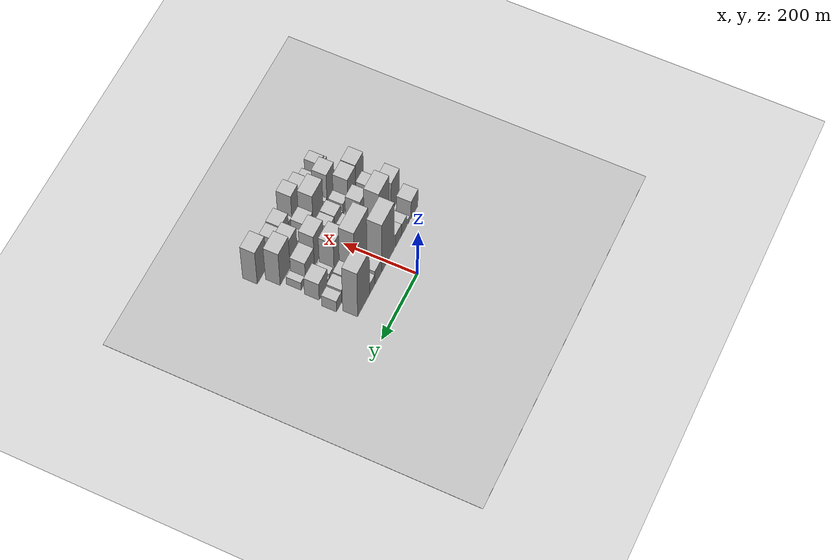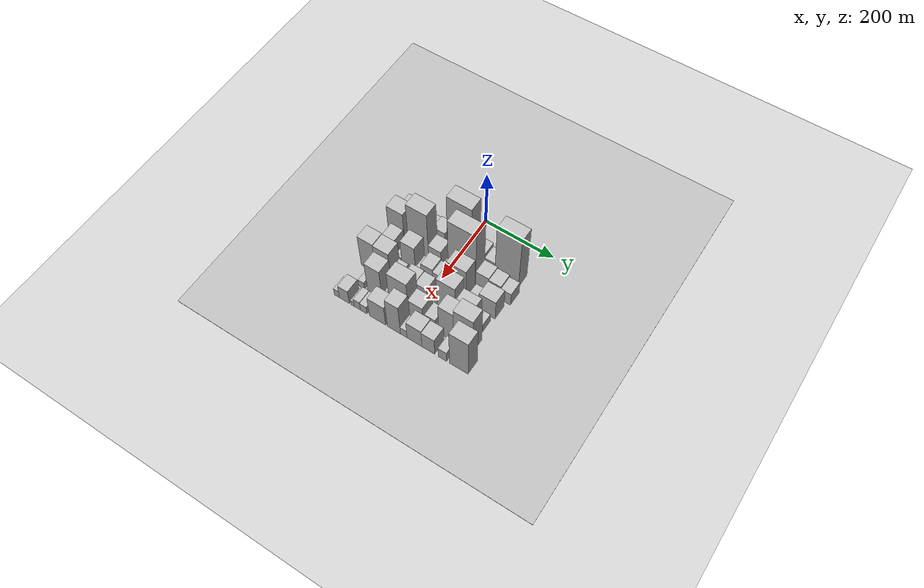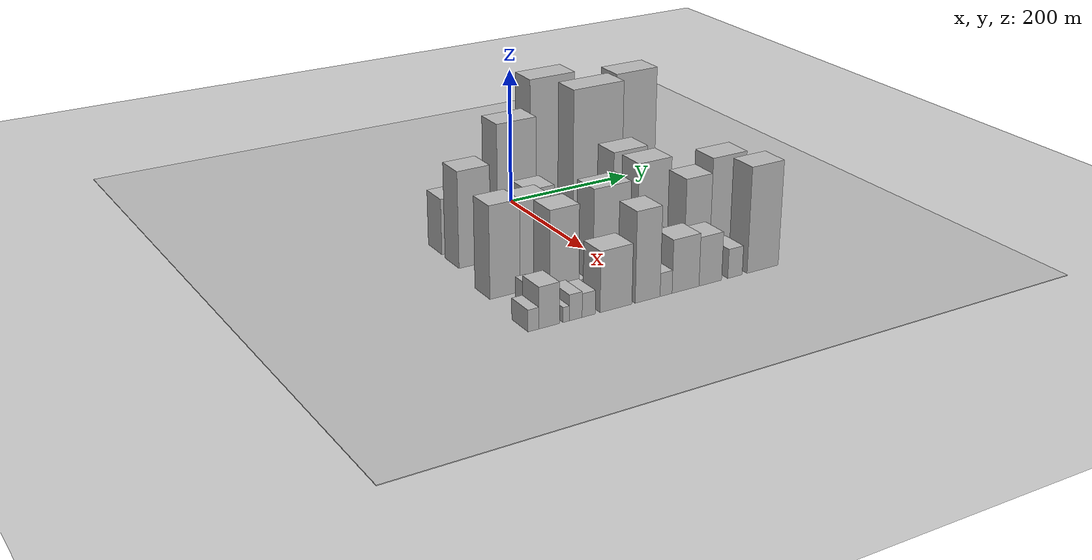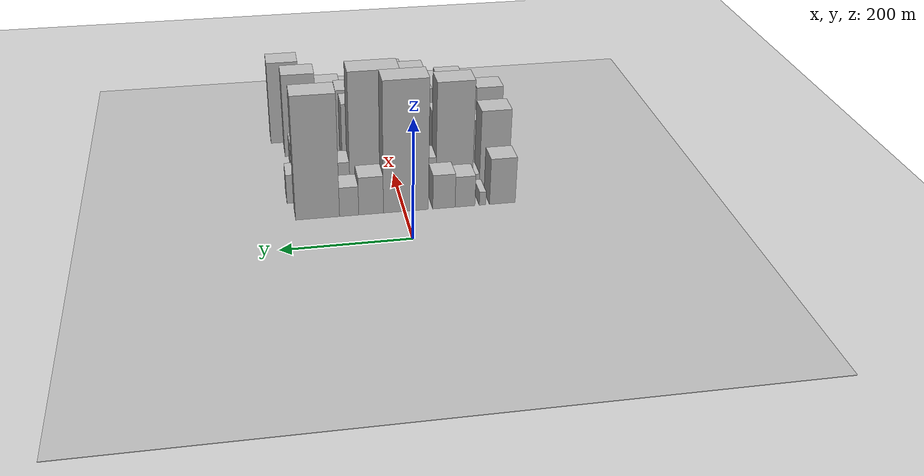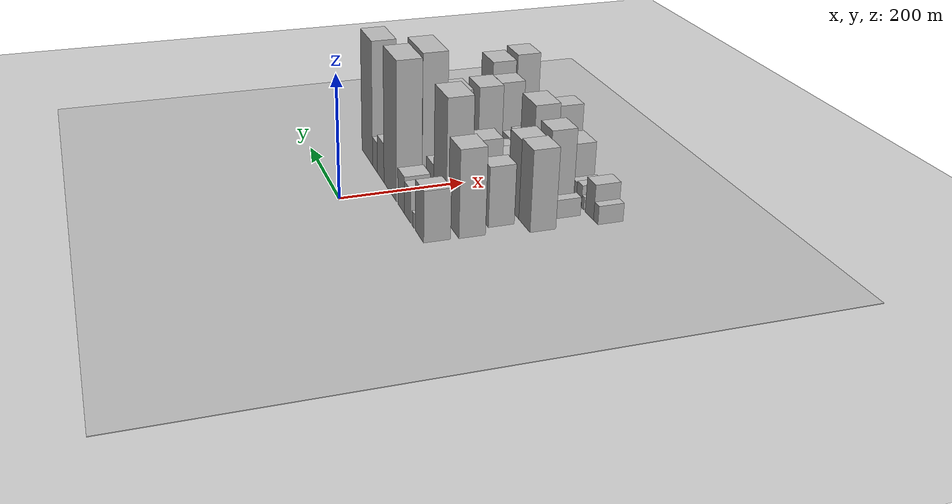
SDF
<sdf version="1.6">
 <world name="default">
  <include><name>ground_plane_1</name><uri>model://HANNAS_ground_plane</uri></include>
  <include>
   <name>ground_plane_2</name>
   <uri>model://HANNAS_ground_plane</uri>
   <pose>100 0 0  0 0 0</pose>
  </include>
  <model name="building_18">
   <static>1</static>
   <pose>100.0000 -155.4308 0 0.000000 0.000000 0.000000</pose>
   <link name="link">
    <pose>0 0 40.50 0 0 0</pose>
    <collision name="collision"><geometry><box><size>40.0000 41.4111 81.0000</size></box></geometry></collision>
    <visual name="visual">
     <cast_shadows>0</cast_shadows>
     <geometry><box><size>40.0000 41.4111 81.0000</size></box></geometry>
     <material>
      <script>
       <uri>model://HANNAS_wall/materials/scripts</uri>
       <uri>model://HANNAS_wall/materials/textures</uri>
       <name>vrc/HANNAS_wall</name>
      </script>
     </material>
    </visual>
   </link>
  </model>
  <model name="building_19">
   <static>1</static>
   <pose>100.0000 -123.5469 0 0.000000 0.000000 0.000000</pose>
   <link name="link">
    <pose>0 0 12.00 0 0 0</pose>
    <collision name="collision"><geometry><box><size>40.0000 10.3565 24.0000</size></box></geometry></collision>
    <visual name="visual">
     <cast_shadows>0</cast_shadows>
     <geometry><box><size>40.0000 10.3565 24.0000</size></box></geometry>
     <material>
      <script>
       <uri>model://HANNAS_wall/materials/scripts</uri>
       <uri>model://HANNAS_wall/materials/textures</uri>
       <name>vrc/HANNAS_wall</name>
      </script>
     </material>
    </visual>
   </link>
  </model>
  <model name="building_20">
   <static>1</static>
   <pose>100.0000 -95.4819 0 0.000000 0.000000 0.000000</pose>
   <link name="link">
    <pose>0 0 27.00 0 0 0</pose>
    <collision name="collision"><geometry><box><size>40.0000 31.7735 54.0000</size></box></geometry></collision>
    <visual name="visual">
     <cast_shadows>0</cast_shadows>
     <geometry><box><size>40.0000 31.7735 54.0000</size></box></geometry>
     <material>
      <script>
       <uri>model://HANNAS_wall/materials/scripts</uri>
       <uri>model://HANNAS_wall/materials/textures</uri>
       <name>vrc/HANNAS_wall</name>
      </script>
     </material>
    </visual>
   </link>
  </model>
  <model name="building_21">
   <static>1</static>
   <pose>100.0000 -61.8837 0 0.000000 0.000000 0.000000</pose>
   <link name="link">
    <pose>0 0 30.00 0 0 0</pose>
    <collision name="collision"><geometry><box><size>40.0000 35.4228 60.0000</size></box></geometry></collision>
    <visual name="visual">
     <cast_shadows>0</cast_shadows>
     <geometry><box><size>40.0000 35.4228 60.0000</size></box></geometry>
     <material>
      <script>
       <uri>model://HANNAS_wall/materials/scripts</uri>
       <uri>model://HANNAS_wall/materials/textures</uri>
       <name>vrc/HANNAS_wall</name>
      </script>
     </material>
    </visual>
   </link>
  </model>
  <model name="building_22">
   <static>1</static>
   <pose>100.0000 -1.7306 0 0.000000 0.000000 0.000000</pose>
   <link name="link">
    <pose>0 0 112.50 0 0 0</pose>
    <collision name="collision"><geometry><box><size>40.0000 70.8834 225.0000</size></box></geometry></collision>
    <visual name="visual">
     <cast_shadows>0</cast_shadows>
     <geometry><box><size>40.0000 70.8834 225.0000</size></box></geometry>
     <material>
      <script>
       <uri>model://HANNAS_wall/materials/scripts</uri>
       <uri>model://HANNAS_wall/materials/textures</uri>
       <name>vrc/HANNAS_wall</name>
      </script>
     </material>
    </visual>
   </link>
  </model>
  <model name="building_23">
   <static>1</static>
   <pose>100.0000 53.0281 0 0.000000 0.000000 0.000000</pose>
   <link name="link">
    <pose>0 0 33.00 0 0 0</pose>
    <collision name="collision"><geometry><box><size>40.0000 38.6341 66.0000</size></box></geometry></collision>
    <visual name="visual">
     <cast_shadows>0</cast_shadows>
     <geometry><box><size>40.0000 38.6341 66.0000</size></box></geometry>
     <material>
      <script>
       <uri>model://HANNAS_wall/materials/scripts</uri>
       <uri>model://HANNAS_wall/materials/textures</uri>
       <name>vrc/HANNAS_wall</name>
      </script>
     </material>
    </visual>
   </link>
  </model>
  <model name="building_24">
   <static>1</static>
   <pose>100.0000 87.2513 0 0.000000 0.000000 0.000000</pose>
   <link name="link">
    <pose>0 0 25.50 0 0 0</pose>
    <collision name="collision"><geometry><box><size>40.0000 29.8123 51.0000</size></box></geometry></collision>
    <visual name="visual">
     <cast_shadows>0</cast_shadows>
     <geometry><box><size>40.0000 29.8123 51.0000</size></box></geometry>
     <material>
      <script>
       <uri>model://HANNAS_wall/materials/scripts</uri>
       <uri>model://HANNAS_wall/materials/textures</uri>
       <name>vrc/HANNAS_wall</name>
      </script>
     </material>
    </visual>
   </link>
  </model>
  <model name="building_25">
   <static>1</static>
   <pose>100.0000 136.0312 0 0.000000 0.000000 0.000000</pose>
   <link name="link">
    <pose>0 0 105.00 0 0 0</pose>
    <collision name="collision"><geometry><box><size>40.0000 67.7475 210.0000</size></box></geometry></collision>
    <visual name="visual">
     <cast_shadows>0</cast_shadows>
     <geometry><box><size>40.0000 67.7475 210.0000</size></box></geometry>
     <material>
      <script>
       <uri>model://HANNAS_wall/materials/scripts</uri>
       <uri>model://HANNAS_wall/materials/textures</uri>
       <name>vrc/HANNAS_wall</name>
      </script>
     </material>
    </visual>
   </link>
  </model>
  <model name="building_67">
   <static>1</static>
   <pose>152.0000 -153.4668 0 0.000000 0.000000 0.000000</pose>
   <link name="link">
    <pose>0 0 69.00 0 0 0</pose>
    <collision name="collision"><geometry><box><size>40.0000 48.0730 138.0000</size></box></geometry></collision>
    <visual name="visual">
     <cast_shadows>0</cast_shadows>
     <geometry><box><size>40.0000 48.0730 138.0000</size></box></geometry>
     <material>
      <script>
       <uri>model://HANNAS_wall/materials/scripts</uri>
       <uri>model://HANNAS_wall/materials/textures</uri>
       <name>vrc/HANNAS_wall</name>
      </script>
     </material>
    </visual>
   </link>
  </model>
  <model name="building_68">
   <static>1</static>
   <pose>152.0000 -123.7581 0 0.000000 0.000000 0.000000</pose>
   <link name="link">
    <pose>0 0 13.50 0 0 0</pose>
    <collision name="collision"><geometry><box><size>40.0000 11.3445 27.0000</size></box></geometry></collision>
    <visual name="visual">
     <cast_shadows>0</cast_shadows>
     <geometry><box><size>40.0000 11.3445 27.0000</size></box></geometry>
     <material>
      <script>
       <uri>model://HANNAS_wall/materials/scripts</uri>
       <uri>model://HANNAS_wall/materials/textures</uri>
       <name>vrc/HANNAS_wall</name>
      </script>
     </material>
    </visual>
   </link>
  </model>
  <model name="building_69">
   <static>1</static>
   <pose>152.0000 -88.2406 0 0.000000 0.000000 0.000000</pose>
   <link name="link">
    <pose>0 0 96.00 0 0 0</pose>
    <collision name="collision"><geometry><box><size>40.0000 59.6905 192.0000</size></box></geometry></collision>
    <visual name="visual">
     <cast_shadows>0</cast_shadows>
     <geometry><box><size>40.0000 59.6905 192.0000</size></box></geometry>
     <material>
      <script>
       <uri>model://HANNAS_wall/materials/scripts</uri>
       <uri>model://HANNAS_wall/materials/textures</uri>
       <name>vrc/HANNAS_wall</name>
      </script>
     </material>
    </visual>
   </link>
  </model>
  <model name="building_70">
   <static>1</static>
   <pose>152.0000 -39.9278 0 0.000000 0.000000 0.000000</pose>
   <link name="link">
    <pose>0 0 31.50 0 0 0</pose>
    <collision name="collision"><geometry><box><size>40.0000 36.9350 63.0000</size></box></geometry></collision>
    <visual name="visual">
     <cast_shadows>0</cast_shadows>
     <geometry><box><size>40.0000 36.9350 63.0000</size></box></geometry>
     <material>
      <script>
       <uri>model://HANNAS_wall/materials/scripts</uri>
       <uri>model://HANNAS_wall/materials/textures</uri>
       <name>vrc/HANNAS_wall</name>
      </script>
     </material>
    </visual>
   </link>
  </model>
  <model name="building_71">
   <static>1</static>
   <pose>152.0000 -5.7813 0 0.000000 0.000000 0.000000</pose>
   <link name="link">
    <pose>0 0 12.00 0 0 0</pose>
    <collision name="collision"><geometry><box><size>40.0000 11.3581 24.0000</size></box></geometry></collision>
    <visual name="visual">
     <cast_shadows>0</cast_shadows>
     <geometry><box><size>40.0000 11.3581 24.0000</size></box></geometry>
     <material>
      <script>
       <uri>model://HANNAS_wall/materials/scripts</uri>
       <uri>model://HANNAS_wall/materials/textures</uri>
       <name>vrc/HANNAS_wall</name>
      </script>
     </material>
    </visual>
   </link>
  </model>
  <model name="building_72">
   <static>1</static>
   <pose>152.0000 39.7575 0 0.000000 0.000000 0.000000</pose>
   <link name="link">
    <pose>0 0 109.50 0 0 0</pose>
    <collision name="collision"><geometry><box><size>40.0000 79.7196 219.0000</size></box></geometry></collision>
    <visual name="visual">
     <cast_shadows>0</cast_shadows>
     <geometry><box><size>40.0000 79.7196 219.0000</size></box></geometry>
     <material>
      <script>
       <uri>model://HANNAS_wall/materials/scripts</uri>
       <uri>model://HANNAS_wall/materials/textures</uri>
       <name>vrc/HANNAS_wall</name>
      </script>
     </material>
    </visual>
   </link>
  </model>
  <model name="building_73">
   <static>1</static>
   <pose>152.0000 98.0294 0 0.000000 0.000000 0.000000</pose>
   <link name="link">
    <pose>0 0 33.00 0 0 0</pose>
    <collision name="collision"><geometry><box><size>40.0000 36.8241 66.0000</size></box></geometry></collision>
    <visual name="visual">
     <cast_shadows>0</cast_shadows>
     <geometry><box><size>40.0000 36.8241 66.0000</size></box></geometry>
     <material>
      <script>
       <uri>model://HANNAS_wall/materials/scripts</uri>
       <uri>model://HANNAS_wall/materials/textures</uri>
       <name>vrc/HANNAS_wall</name>
      </script>
     </material>
    </visual>
   </link>
  </model>
  <model name="building_74">
   <static>1</static>
   <pose>152.0000 133.5778 0 0.000000 0.000000 0.000000</pose>
   <link name="link">
    <pose>0 0 30.00 0 0 0</pose>
    <collision name="collision"><geometry><box><size>40.0000 34.2728 60.0000</size></box></geometry></collision>
    <visual name="visual">
     <cast_shadows>0</cast_shadows>
     <geometry><box><size>40.0000 34.2728 60.0000</size></box></geometry>
     <material>
      <script>
       <uri>model://HANNAS_wall/materials/scripts</uri>
       <uri>model://HANNAS_wall/materials/textures</uri>
       <name>vrc/HANNAS_wall</name>
      </script>
     </material>
    </visual>
   </link>
  </model>
  <model name="building_75">
   <static>1</static>
   <pose>152.0000 165.1294 0 0.000000 0.000000 0.000000</pose>
   <link name="link">
    <pose>0 0 25.50 0 0 0</pose>
    <collision name="collision"><geometry><box><size>40.0000 28.8304 51.0000</size></box></geometry></collision>
    <visual name="visual">
     <cast_shadows>0</cast_shadows>
     <geometry><box><size>40.0000 28.8304 51.0000</size></box></geometry>
     <material>
      <script>
       <uri>model://HANNAS_wall/materials/scripts</uri>
       <uri>model://HANNAS_wall/materials/textures</uri>
       <name>vrc/HANNAS_wall</name>
      </script>
     </material>
    </visual>
   </link>
  </model>
  <model name="building_116">
   <static>1</static>
   <pose>204.0000 -138.9211 0 0.000000 0.000000 0.000000</pose>
   <link name="link">
    <pose>0 0 48.00 0 0 0</pose>
    <collision name="collision"><geometry><box><size>40.0000 35.5114 96.0000</size></box></geometry></collision>
    <visual name="visual">
     <cast_shadows>0</cast_shadows>
     <geometry><box><size>40.0000 35.5114 96.0000</size></box></geometry>
     <material>
      <script>
       <uri>model://HANNAS_wall/materials/scripts</uri>
       <uri>model://HANNAS_wall/materials/textures</uri>
       <name>vrc/HANNAS_wall</name>
      </script>
     </material>
    </visual>
   </link>
  </model>
  <model name="building_117">
   <static>1</static>
   <pose>204.0000 -111.5576 0 0.000000 0.000000 0.000000</pose>
   <link name="link">
    <pose>0 0 18.00 0 0 0</pose>
    <collision name="collision"><geometry><box><size>40.0000 19.2158 36.0000</size></box></geometry></collision>
    <visual name="visual">
     <cast_shadows>0</cast_shadows>
     <geometry><box><size>40.0000 19.2158 36.0000</size></box></geometry>
     <material>
      <script>
       <uri>model://HANNAS_wall/materials/scripts</uri>
       <uri>model://HANNAS_wall/materials/textures</uri>
       <name>vrc/HANNAS_wall</name>
      </script>
     </material>
    </visual>
   </link>
  </model>
  <model name="building_118">
   <static>1</static>
   <pose>204.0000 -81.7877 0 0.000000 0.000000 0.000000</pose>
   <link name="link">
    <pose>0 0 57.00 0 0 0</pose>
    <collision name="collision"><geometry><box><size>40.0000 40.3239 114.0000</size></box></geometry></collision>
    <visual name="visual">
     <cast_shadows>0</cast_shadows>
     <geometry><box><size>40.0000 40.3239 114.0000</size></box></geometry>
     <material>
      <script>
       <uri>model://HANNAS_wall/materials/scripts</uri>
       <uri>model://HANNAS_wall/materials/textures</uri>
       <name>vrc/HANNAS_wall</name>
      </script>
     </material>
    </visual>
   </link>
  </model>
  <model name="building_119">
   <static>1</static>
   <pose>204.0000 -53.2513 0 0.000000 0.000000 0.000000</pose>
   <link name="link">
    <pose>0 0 15.00 0 0 0</pose>
    <collision name="collision"><geometry><box><size>40.0000 16.7489 30.0000</size></box></geometry></collision>
    <visual name="visual">
     <cast_shadows>0</cast_shadows>
     <geometry><box><size>40.0000 16.7489 30.0000</size></box></geometry>
     <material>
      <script>
       <uri>model://HANNAS_wall/materials/scripts</uri>
       <uri>model://HANNAS_wall/materials/textures</uri>
       <name>vrc/HANNAS_wall</name>
      </script>
     </material>
    </visual>
   </link>
  </model>
  <model name="building_120">
   <static>1</static>
   <pose>204.0000 -27.8404 0 0.000000 0.000000 0.000000</pose>
   <link name="link">
    <pose>0 0 31.50 0 0 0</pose>
    <collision name="collision"><geometry><box><size>40.0000 34.0728 63.0000</size></box></geometry></collision>
    <visual name="visual">
     <cast_shadows>0</cast_shadows>
     <geometry><box><size>40.0000 34.0728 63.0000</size></box></geometry>
     <material>
      <script>
       <uri>model://HANNAS_wall/materials/scripts</uri>
       <uri>model://HANNAS_wall/materials/textures</uri>
       <name>vrc/HANNAS_wall</name>
      </script>
     </material>
    </visual>
   </link>
  </model>
  <model name="building_121">
   <static>1</static>
   <pose>204.0000 4.6006 0 0.000000 0.000000 0.000000</pose>
   <link name="link">
    <pose>0 0 27.00 0 0 0</pose>
    <collision name="collision"><geometry><box><size>40.0000 30.8091 54.0000</size></box></geometry></collision>
    <visual name="visual">
     <cast_shadows>0</cast_shadows>
     <geometry><box><size>40.0000 30.8091 54.0000</size></box></geometry>
     <material>
      <script>
       <uri>model://HANNAS_wall/materials/scripts</uri>
       <uri>model://HANNAS_wall/materials/textures</uri>
       <name>vrc/HANNAS_wall</name>
      </script>
     </material>
    </visual>
   </link>
  </model>
  <model name="building_122">
   <static>1</static>
   <pose>204.0000 25.6570 0 0.000000 0.000000 0.000000</pose>
   <link name="link">
    <pose>0 0 13.50 0 0 0</pose>
    <collision name="collision"><geometry><box><size>40.0000 11.3038 27.0000</size></box></geometry></collision>
    <visual name="visual">
     <cast_shadows>0</cast_shadows>
     <geometry><box><size>40.0000 11.3038 27.0000</size></box></geometry>
     <material>
      <script>
       <uri>model://HANNAS_wall/materials/scripts</uri>
       <uri>model://HANNAS_wall/materials/textures</uri>
       <name>vrc/HANNAS_wall</name>
      </script>
     </material>
    </visual>
   </link>
  </model>
  <model name="building_123">
   <static>1</static>
   <pose>204.0000 58.3716 0 0.000000 0.000000 0.000000</pose>
   <link name="link">
    <pose>0 0 70.50 0 0 0</pose>
    <collision name="collision"><geometry><box><size>40.0000 54.1253 141.0000</size></box></geometry></collision>
    <visual name="visual">
     <cast_shadows>0</cast_shadows>
     <geometry><box><size>40.0000 54.1253 141.0000</size></box></geometry>
     <material>
      <script>
       <uri>model://HANNAS_wall/materials/scripts</uri>
       <uri>model://HANNAS_wall/materials/textures</uri>
       <name>vrc/HANNAS_wall</name>
      </script>
     </material>
    </visual>
   </link>
  </model>
  <model name="building_124">
   <static>1</static>
   <pose>204.0000 100.2069 0 0.000000 0.000000 0.000000</pose>
   <link name="link">
    <pose>0 0 18.00 0 0 0</pose>
    <collision name="collision"><geometry><box><size>40.0000 21.5454 36.0000</size></box></geometry></collision>
    <visual name="visual">
     <cast_shadows>0</cast_shadows>
     <geometry><box><size>40.0000 21.5454 36.0000</size></box></geometry>
     <material>
      <script>
       <uri>model://HANNAS_wall/materials/scripts</uri>
       <uri>model://HANNAS_wall/materials/textures</uri>
       <name>vrc/HANNAS_wall</name>
      </script>
     </material>
    </visual>
   </link>
  </model>
  <model name="building_125">
   <static>1</static>
   <pose>204.0000 116.3956 0 0.000000 0.000000 0.000000</pose>
   <link name="link">
    <pose>0 0 12.00 0 0 0</pose>
    <collision name="collision"><geometry><box><size>40.0000 10.8320 24.0000</size></box></geometry></collision>
    <visual name="visual">
     <cast_shadows>0</cast_shadows>
     <geometry><box><size>40.0000 10.8320 24.0000</size></box></geometry>
     <material>
      <script>
       <uri>model://HANNAS_wall/materials/scripts</uri>
       <uri>model://HANNAS_wall/materials/textures</uri>
       <name>vrc/HANNAS_wall</name>
      </script>
     </material>
    </visual>
   </link>
  </model>
  <model name="building_126">
   <static>1</static>
   <pose>204.0000 145.1345 0 0.000000 0.000000 0.000000</pose>
   <link name="link">
    <pose>0 0 39.00 0 0 0</pose>
    <collision name="collision"><geometry><box><size>40.0000 46.6458 78.0000</size></box></geometry></collision>
    <visual name="visual">
     <cast_shadows>0</cast_shadows>
     <geometry><box><size>40.0000 46.6458 78.0000</size></box></geometry>
     <material>
      <script>
       <uri>model://HANNAS_wall/materials/scripts</uri>
       <uri>model://HANNAS_wall/materials/textures</uri>
       <name>vrc/HANNAS_wall</name>
      </script>
     </material>
    </visual>
   </link>
  </model>
  <model name="building_170">
   <static>1</static>
   <pose>256.0000 -166.0962 0 0.000000 0.000000 0.000000</pose>
   <link name="link">
    <pose>0 0 64.50 0 0 0</pose>
    <collision name="collision"><geometry><box><size>40.0000 44.4024 129.0000</size></box></geometry></collision>
    <visual name="visual">
     <cast_shadows>0</cast_shadows>
     <geometry><box><size>40.0000 44.4024 129.0000</size></box></geometry>
     <material>
      <script>
       <uri>model://HANNAS_wall/materials/scripts</uri>
       <uri>model://HANNAS_wall/materials/textures</uri>
       <name>vrc/HANNAS_wall</name>
      </script>
     </material>
    </visual>
   </link>
  </model>
  <model name="building_171">
   <static>1</static>
   <pose>256.0000 -121.4034 0 0.000000 0.000000 0.000000</pose>
   <link name="link">
    <pose>0 0 63.00 0 0 0</pose>
    <collision name="collision"><geometry><box><size>40.0000 44.9833 126.0000</size></box></geometry></collision>
    <visual name="visual">
     <cast_shadows>0</cast_shadows>
     <geometry><box><size>40.0000 44.9833 126.0000</size></box></geometry>
     <material>
      <script>
       <uri>model://HANNAS_wall/materials/scripts</uri>
       <uri>model://HANNAS_wall/materials/textures</uri>
       <name>vrc/HANNAS_wall</name>
      </script>
     </material>
    </visual>
   </link>
  </model>
  <model name="building_172">
   <static>1</static>
   <pose>256.0000 -85.1484 0 0.000000 0.000000 0.000000</pose>
   <link name="link">
    <pose>0 0 27.00 0 0 0</pose>
    <collision name="collision"><geometry><box><size>40.0000 27.5268 54.0000</size></box></geometry></collision>
    <visual name="visual">
     <cast_shadows>0</cast_shadows>
     <geometry><box><size>40.0000 27.5268 54.0000</size></box></geometry>
     <material>
      <script>
       <uri>model://HANNAS_wall/materials/scripts</uri>
       <uri>model://HANNAS_wall/materials/textures</uri>
       <name>vrc/HANNAS_wall</name>
      </script>
     </material>
    </visual>
   </link>
  </model>
  <model name="building_173">
   <static>1</static>
   <pose>256.0000 -66.0285 0 0.000000 0.000000 0.000000</pose>
   <link name="link">
    <pose>0 0 12.00 0 0 0</pose>
    <collision name="collision"><geometry><box><size>40.0000 10.7129 24.0000</size></box></geometry></collision>
    <visual name="visual">
     <cast_shadows>0</cast_shadows>
     <geometry><box><size>40.0000 10.7129 24.0000</size></box></geometry>
     <material>
      <script>
       <uri>model://HANNAS_wall/materials/scripts</uri>
       <uri>model://HANNAS_wall/materials/textures</uri>
       <name>vrc/HANNAS_wall</name>
      </script>
     </material>
    </visual>
   </link>
  </model>
  <model name="building_174">
   <static>1</static>
   <pose>256.0000 -42.7188 0 0.000000 0.000000 0.000000</pose>
   <link name="link">
    <pose>0 0 33.00 0 0 0</pose>
    <collision name="collision"><geometry><box><size>40.0000 35.9066 66.0000</size></box></geometry></collision>
    <visual name="visual">
     <cast_shadows>0</cast_shadows>
     <geometry><box><size>40.0000 35.9066 66.0000</size></box></geometry>
     <material>
      <script>
       <uri>model://HANNAS_wall/materials/scripts</uri>
       <uri>model://HANNAS_wall/materials/textures</uri>
       <name>vrc/HANNAS_wall</name>
      </script>
     </material>
    </visual>
   </link>
  </model>
  <model name="building_175">
   <static>1</static>
   <pose>256.0000 -8.5671 0 0.000000 0.000000 0.000000</pose>
   <link name="link">
    <pose>0 0 31.50 0 0 0</pose>
    <collision name="collision"><geometry><box><size>40.0000 32.3968 63.0000</size></box></geometry></collision>
    <visual name="visual">
     <cast_shadows>0</cast_shadows>
     <geometry><box><size>40.0000 32.3968 63.0000</size></box></geometry>
     <material>
      <script>
       <uri>model://HANNAS_wall/materials/scripts</uri>
       <uri>model://HANNAS_wall/materials/textures</uri>
       <name>vrc/HANNAS_wall</name>
      </script>
     </material>
    </visual>
   </link>
  </model>
  <model name="building_176">
   <static>1</static>
   <pose>256.0000 10.7865 0 0.000000 0.000000 0.000000</pose>
   <link name="link">
    <pose>0 0 7.50 0 0 0</pose>
    <collision name="collision"><geometry><box><size>40.0000 6.3102 15.0000</size></box></geometry></collision>
    <visual name="visual">
     <cast_shadows>0</cast_shadows>
     <geometry><box><size>40.0000 6.3102 15.0000</size></box></geometry>
     <material>
      <script>
       <uri>model://HANNAS_wall/materials/scripts</uri>
       <uri>model://HANNAS_wall/materials/textures</uri>
       <name>vrc/HANNAS_wall</name>
      </script>
     </material>
    </visual>
   </link>
  </model>
  <model name="building_177">
   <static>1</static>
   <pose>256.0000 25.2659 0 0.000000 0.000000 0.000000</pose>
   <link name="link">
    <pose>0 0 22.50 0 0 0</pose>
    <collision name="collision"><geometry><box><size>40.0000 22.6486 45.0000</size></box></geometry></collision>
    <visual name="visual">
     <cast_shadows>0</cast_shadows>
     <geometry><box><size>40.0000 22.6486 45.0000</size></box></geometry>
     <material>
      <script>
       <uri>model://HANNAS_wall/materials/scripts</uri>
       <uri>model://HANNAS_wall/materials/textures</uri>
       <name>vrc/HANNAS_wall</name>
      </script>
     </material>
    </visual>
   </link>
  </model>
  <model name="building_178">
   <static>1</static>
   <pose>256.0000 62.6673 0 0.000000 0.000000 0.000000</pose>
   <link name="link">
    <pose>0 0 70.50 0 0 0</pose>
    <collision name="collision"><geometry><box><size>40.0000 52.1542 141.0000</size></box></geometry></collision>
    <visual name="visual">
     <cast_shadows>0</cast_shadows>
     <geometry><box><size>40.0000 52.1542 141.0000</size></box></geometry>
     <material>
      <script>
       <uri>model://HANNAS_wall/materials/scripts</uri>
       <uri>model://HANNAS_wall/materials/textures</uri>
       <name>vrc/HANNAS_wall</name>
      </script>
     </material>
    </visual>
   </link>
  </model>
  <model name="building_179">
   <static>1</static>
   <pose>256.0000 113.3576 0 0.000000 0.000000 0.000000</pose>
   <link name="link">
    <pose>0 0 45.00 0 0 0</pose>
    <collision name="collision"><geometry><box><size>40.0000 49.2265 90.0000</size></box></geometry></collision>
    <visual name="visual">
     <cast_shadows>0</cast_shadows>
     <geometry><box><size>40.0000 49.2265 90.0000</size></box></geometry>
     <material>
      <script>
       <uri>model://HANNAS_wall/materials/scripts</uri>
       <uri>model://HANNAS_wall/materials/textures</uri>
       <name>vrc/HANNAS_wall</name>
      </script>
     </material>
    </visual>
   </link>
  </model>
  <model name="building_180">
   <static>1</static>
   <pose>256.0000 152.2221 0 0.000000 0.000000 0.000000</pose>
   <link name="link">
    <pose>0 0 18.00 0 0 0</pose>
    <collision name="collision"><geometry><box><size>40.0000 20.5025 36.0000</size></box></geometry></collision>
    <visual name="visual">
     <cast_shadows>0</cast_shadows>
     <geometry><box><size>40.0000 20.5025 36.0000</size></box></geometry>
     <material>
      <script>
       <uri>model://HANNAS_wall/materials/scripts</uri>
       <uri>model://HANNAS_wall/materials/textures</uri>
       <name>vrc/HANNAS_wall</name>
      </script>
     </material>
    </visual>
   </link>
  </model>
  <model name="building_224">
   <static>1</static>
   <pose>308.0000 -149.0746 0 0.000000 0.000000 0.000000</pose>
   <link name="link">
    <pose>0 0 15.00 0 0 0</pose>
    <collision name="collision"><geometry><box><size>40.0000 17.2364 30.0000</size></box></geometry></collision>
    <visual name="visual">
     <cast_shadows>0</cast_shadows>
     <geometry><box><size>40.0000 17.2364 30.0000</size></box></geometry>
     <material>
      <script>
       <uri>model://HANNAS_wall/materials/scripts</uri>
       <uri>model://HANNAS_wall/materials/textures</uri>
       <name>vrc/HANNAS_wall</name>
      </script>
     </material>
    </visual>
   </link>
  </model>
  <model name="building_225">
   <static>1</static>
   <pose>308.0000 -109.0099 0 0.000000 0.000000 0.000000</pose>
   <link name="link">
    <pose>0 0 64.50 0 0 0</pose>
    <collision name="collision"><geometry><box><size>40.0000 42.8931 129.0000</size></box></geometry></collision>
    <visual name="visual">
     <cast_shadows>0</cast_shadows>
     <geometry><box><size>40.0000 42.8931 129.0000</size></box></geometry>
     <material>
      <script>
       <uri>model://HANNAS_wall/materials/scripts</uri>
       <uri>model://HANNAS_wall/materials/textures</uri>
       <name>vrc/HANNAS_wall</name>
      </script>
     </material>
    </visual>
   </link>
  </model>
  <model name="building_226">
   <static>1</static>
   <pose>308.0000 -81.7986 0 0.000000 0.000000 0.000000</pose>
   <link name="link">
    <pose>0 0 12.00 0 0 0</pose>
    <collision name="collision"><geometry><box><size>40.0000 11.5295 24.0000</size></box></geometry></collision>
    <visual name="visual">
     <cast_shadows>0</cast_shadows>
     <geometry><box><size>40.0000 11.5295 24.0000</size></box></geometry>
     <material>
      <script>
       <uri>model://HANNAS_wall/materials/scripts</uri>
       <uri>model://HANNAS_wall/materials/textures</uri>
       <name>vrc/HANNAS_wall</name>
      </script>
     </material>
    </visual>
   </link>
  </model>
  <model name="building_227">
   <static>1</static>
   <pose>308.0000 -38.1745 0 0.000000 0.000000 0.000000</pose>
   <link name="link">
    <pose>0 0 72.00 0 0 0</pose>
    <collision name="collision"><geometry><box><size>40.0000 55.7187 144.0000</size></box></geometry></collision>
    <visual name="visual">
     <cast_shadows>0</cast_shadows>
     <geometry><box><size>40.0000 55.7187 144.0000</size></box></geometry>
     <material>
      <script>
       <uri>model://HANNAS_wall/materials/scripts</uri>
       <uri>model://HANNAS_wall/materials/textures</uri>
       <name>vrc/HANNAS_wall</name>
      </script>
     </material>
    </visual>
   </link>
  </model>
  <model name="building_228">
   <static>1</static>
   <pose>308.0000 10.4330 0 0.000000 0.000000 0.000000</pose>
   <link name="link">
    <pose>0 0 36.00 0 0 0</pose>
    <collision name="collision"><geometry><box><size>40.0000 41.4963 72.0000</size></box></geometry></collision>
    <visual name="visual">
     <cast_shadows>0</cast_shadows>
     <geometry><box><size>40.0000 41.4963 72.0000</size></box></geometry>
     <material>
      <script>
       <uri>model://HANNAS_wall/materials/scripts</uri>
       <uri>model://HANNAS_wall/materials/textures</uri>
       <name>vrc/HANNAS_wall</name>
      </script>
     </material>
    </visual>
   </link>
  </model>
  <model name="building_229">
   <static>1</static>
   <pose>308.0000 51.9303 0 0.000000 0.000000 0.000000</pose>
   <link name="link">
    <pose>0 0 25.50 0 0 0</pose>
    <collision name="collision"><geometry><box><size>40.0000 29.4984 51.0000</size></box></geometry></collision>
    <visual name="visual">
     <cast_shadows>0</cast_shadows>
     <geometry><box><size>40.0000 29.4984 51.0000</size></box></geometry>
     <material>
      <script>
       <uri>model://HANNAS_wall/materials/scripts</uri>
       <uri>model://HANNAS_wall/materials/textures</uri>
       <name>vrc/HANNAS_wall</name>
      </script>
     </material>
    </visual>
   </link>
  </model>
  <model name="building_230">
   <static>1</static>
   <pose>308.0000 71.4537 0 0.000000 0.000000 0.000000</pose>
   <link name="link">
    <pose>0 0 10.50 0 0 0</pose>
    <collision name="collision"><geometry><box><size>40.0000 9.5484 21.0000</size></box></geometry></collision>
    <visual name="visual">
     <cast_shadows>0</cast_shadows>
     <geometry><box><size>40.0000 9.5484 21.0000</size></box></geometry>
     <material>
      <script>
       <uri>model://HANNAS_wall/materials/scripts</uri>
       <uri>model://HANNAS_wall/materials/textures</uri>
       <name>vrc/HANNAS_wall</name>
      </script>
     </material>
    </visual>
   </link>
  </model>
  <model name="building_231">
   <static>1</static>
   <pose>308.0000 96.9244 0 0.000000 0.000000 0.000000</pose>
   <link name="link">
    <pose>0 0 64.50 0 0 0</pose>
    <collision name="collision"><geometry><box><size>40.0000 41.3930 129.0000</size></box></geometry></collision>
    <visual name="visual">
     <cast_shadows>0</cast_shadows>
     <geometry><box><size>40.0000 41.3930 129.0000</size></box></geometry>
     <material>
      <script>
       <uri>model://HANNAS_wall/materials/scripts</uri>
       <uri>model://HANNAS_wall/materials/textures</uri>
       <name>vrc/HANNAS_wall</name>
      </script>
     </material>
    </visual>
   </link>
  </model>
  <model name="building_232">
   <static>1</static>
   <pose>308.0000 144.8919 0 0.000000 0.000000 0.000000</pose>
   <link name="link">
    <pose>0 0 75.00 0 0 0</pose>
    <collision name="collision"><geometry><box><size>40.0000 54.5420 150.0000</size></box></geometry></collision>
    <visual name="visual">
     <cast_shadows>0</cast_shadows>
     <geometry><box><size>40.0000 54.5420 150.0000</size></box></geometry>
     <material>
      <script>
       <uri>model://HANNAS_wall/materials/scripts</uri>
       <uri>model://HANNAS_wall/materials/textures</uri>
       <name>vrc/HANNAS_wall</name>
      </script>
     </material>
    </visual>
   </link>
  </model>
  <model name="building_272">
   <static>1</static>
   <pose>360.0000 -185.1057 0 0.000000 0.000000 0.000000</pose>
   <link name="link">
    <pose>0 0 15.00 0 0 0</pose>
    <collision name="collision"><geometry><box><size>40.0000 15.3126 30.0000</size></box></geometry></collision>
    <visual name="visual">
     <cast_shadows>0</cast_shadows>
     <geometry><box><size>40.0000 15.3126 30.0000</size></box></geometry>
     <material>
      <script>
       <uri>model://HANNAS_wall/materials/scripts</uri>
       <uri>model://HANNAS_wall/materials/textures</uri>
       <name>vrc/HANNAS_wall</name>
      </script>
     </material>
    </visual>
   </link>
  </model>
  <model name="building_273">
   <static>1</static>
   <pose>360.0000 -162.6305 0 0.000000 0.000000 0.000000</pose>
   <link name="link">
    <pose>0 0 28.50 0 0 0</pose>
    <collision name="collision"><geometry><box><size>40.0000 29.6378 57.0000</size></box></geometry></collision>
    <visual name="visual">
     <cast_shadows>0</cast_shadows>
     <geometry><box><size>40.0000 29.6378 57.0000</size></box></geometry>
     <material>
      <script>
       <uri>model://HANNAS_wall/materials/scripts</uri>
       <uri>model://HANNAS_wall/materials/textures</uri>
       <name>vrc/HANNAS_wall</name>
      </script>
     </material>
    </visual>
   </link>
  </model>
  <model name="building_274">
   <static>1</static>
   <pose>360.0000 -138.2475 0 0.000000 0.000000 0.000000</pose>
   <link name="link">
    <pose>0 0 10.50 0 0 0</pose>
    <collision name="collision"><geometry><box><size>40.0000 9.1282 21.0000</size></box></geometry></collision>
    <visual name="visual">
     <cast_shadows>0</cast_shadows>
     <geometry><box><size>40.0000 9.1282 21.0000</size></box></geometry>
     <material>
      <script>
       <uri>model://HANNAS_wall/materials/scripts</uri>
       <uri>model://HANNAS_wall/materials/textures</uri>
       <name>vrc/HANNAS_wall</name>
      </script>
     </material>
    </visual>
   </link>
  </model>
  <model name="building_275">
   <static>1</static>
   <pose>360.0000 -124.3843 0 0.000000 0.000000 0.000000</pose>
   <link name="link">
    <pose>0 0 18.00 0 0 0</pose>
    <collision name="collision"><geometry><box><size>40.0000 18.5983 36.0000</size></box></geometry></collision>
    <visual name="visual">
     <cast_shadows>0</cast_shadows>
     <geometry><box><size>40.0000 18.5983 36.0000</size></box></geometry>
     <material>
      <script>
       <uri>model://HANNAS_wall/materials/scripts</uri>
       <uri>model://HANNAS_wall/materials/textures</uri>
       <name>vrc/HANNAS_wall</name>
      </script>
     </material>
    </visual>
   </link>
  </model>
  <model name="building_276">
   <static>1</static>
   <pose>360.0000 -105.3226 0 0.000000 0.000000 0.000000</pose>
   <link name="link">
    <pose>0 0 16.50 0 0 0</pose>
    <collision name="collision"><geometry><box><size>40.0000 19.5251 33.0000</size></box></geometry></collision>
    <visual name="visual">
     <cast_shadows>0</cast_shadows>
     <geometry><box><size>40.0000 19.5251 33.0000</size></box></geometry>
     <material>
      <script>
       <uri>model://HANNAS_wall/materials/scripts</uri>
       <uri>model://HANNAS_wall/materials/textures</uri>
       <name>vrc/HANNAS_wall</name>
      </script>
     </material>
    </visual>
   </link>
  </model>
  <model name="building_277">
   <static>1</static>
   <pose>360.0000 -64.6850 0 0.000000 0.000000 0.000000</pose>
   <link name="link">
    <pose>0 0 42.00 0 0 0</pose>
    <collision name="collision"><geometry><box><size>40.0000 47.7500 84.0000</size></box></geometry></collision>
    <visual name="visual">
     <cast_shadows>0</cast_shadows>
     <geometry><box><size>40.0000 47.7500 84.0000</size></box></geometry>
     <material>
      <script>
       <uri>model://HANNAS_wall/materials/scripts</uri>
       <uri>model://HANNAS_wall/materials/textures</uri>
       <name>vrc/HANNAS_wall</name>
      </script>
     </material>
    </visual>
   </link>
  </model>
  <model name="building_278">
   <static>1</static>
   <pose>360.0000 -16.7545 0 0.000000 0.000000 0.000000</pose>
   <link name="link">
    <pose>0 0 63.00 0 0 0</pose>
    <collision name="collision"><geometry><box><size>40.0000 38.1110 126.0000</size></box></geometry></collision>
    <visual name="visual">
     <cast_shadows>0</cast_shadows>
     <geometry><box><size>40.0000 38.1110 126.0000</size></box></geometry>
     <material>
      <script>
       <uri>model://HANNAS_wall/materials/scripts</uri>
       <uri>model://HANNAS_wall/materials/textures</uri>
       <name>vrc/HANNAS_wall</name>
      </script>
     </material>
    </visual>
   </link>
  </model>
  <model name="building_279">
   <static>1</static>
   <pose>360.0000 11.6036 0 0.000000 0.000000 0.000000</pose>
   <link name="link">
    <pose>0 0 16.50 0 0 0</pose>
    <collision name="collision"><geometry><box><size>40.0000 18.6051 33.0000</size></box></geometry></collision>
    <visual name="visual">
     <cast_shadows>0</cast_shadows>
     <geometry><box><size>40.0000 18.6051 33.0000</size></box></geometry>
     <material>
      <script>
       <uri>model://HANNAS_wall/materials/scripts</uri>
       <uri>model://HANNAS_wall/materials/textures</uri>
       <name>vrc/HANNAS_wall</name>
      </script>
     </material>
    </visual>
   </link>
  </model>
  <model name="building_280">
   <static>1</static>
   <pose>360.0000 42.1270 0 0.000000 0.000000 0.000000</pose>
   <link name="link">
    <pose>0 0 37.50 0 0 0</pose>
    <collision name="collision"><geometry><box><size>40.0000 42.4417 75.0000</size></box></geometry></collision>
    <visual name="visual">
     <cast_shadows>0</cast_shadows>
     <geometry><box><size>40.0000 42.4417 75.0000</size></box></geometry>
     <material>
      <script>
       <uri>model://HANNAS_wall/materials/scripts</uri>
       <uri>model://HANNAS_wall/materials/textures</uri>
       <name>vrc/HANNAS_wall</name>
      </script>
     </material>
    </visual>
   </link>
  </model>
  <model name="building_281">
   <static>1</static>
   <pose>360.0000 81.5005 0 0.000000 0.000000 0.000000</pose>
   <link name="link">
    <pose>0 0 34.50 0 0 0</pose>
    <collision name="collision"><geometry><box><size>40.0000 36.3054 69.0000</size></box></geometry></collision>
    <visual name="visual">
     <cast_shadows>0</cast_shadows>
     <geometry><box><size>40.0000 36.3054 69.0000</size></box></geometry>
     <material>
      <script>
       <uri>model://HANNAS_wall/materials/scripts</uri>
       <uri>model://HANNAS_wall/materials/textures</uri>
       <name>vrc/HANNAS_wall</name>
      </script>
     </material>
    </visual>
   </link>
  </model>
  <model name="building_282">
   <static>1</static>
   <pose>360.0000 121.4086 0 0.000000 0.000000 0.000000</pose>
   <link name="link">
    <pose>0 0 21.00 0 0 0</pose>
    <collision name="collision"><geometry><box><size>40.0000 23.5110 42.0000</size></box></geometry></collision>
    <visual name="visual">
     <cast_shadows>0</cast_shadows>
     <geometry><box><size>40.0000 23.5110 42.0000</size></box></geometry>
     <material>
      <script>
       <uri>model://HANNAS_wall/materials/scripts</uri>
       <uri>model://HANNAS_wall/materials/textures</uri>
       <name>vrc/HANNAS_wall</name>
      </script>
     </material>
    </visual>
   </link>
  </model>
  <model name="building_283">
   <static>1</static>
   <pose>360.0000 167.0848 0 0.000000 0.000000 0.000000</pose>
   <link name="link">
    <pose>0 0 75.00 0 0 0</pose>
    <collision name="collision"><geometry><box><size>40.0000 51.8414 150.0000</size></box></geometry></collision>
    <visual name="visual">
     <cast_shadows>0</cast_shadows>
     <geometry><box><size>40.0000 51.8414 150.0000</size></box></geometry>
     <material>
      <script>
       <uri>model://HANNAS_wall/materials/scripts</uri>
       <uri>model://HANNAS_wall/materials/textures</uri>
       <name>vrc/HANNAS_wall</name>
      </script>
     </material>
    </visual>
   </link>
  </model>
 </world>
</sdf>
